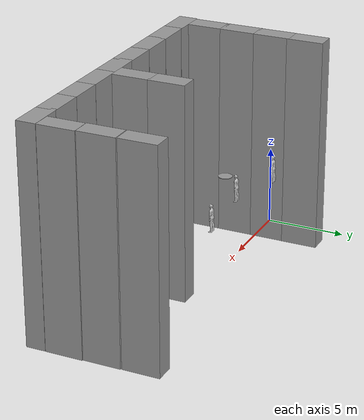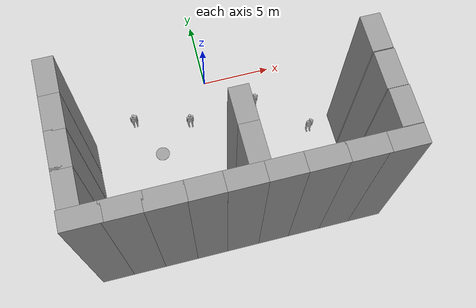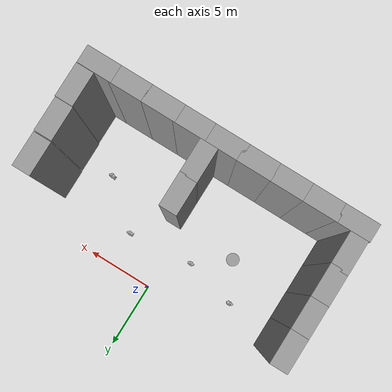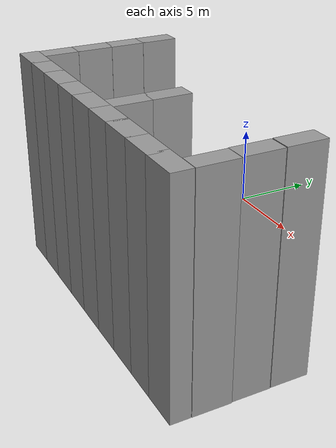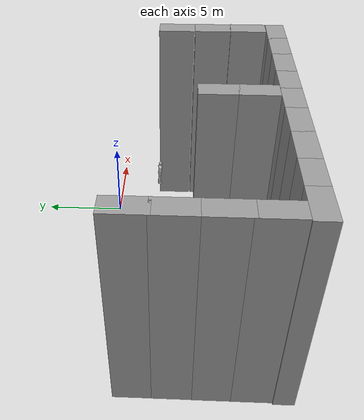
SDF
<sdf version="1.6">
 <model name="indoor_2">
  <link name="link_0_clone_2_clone_clone_clone">
   <pose>-4.34485 -5.08457 0.5 0 -0 0</pose>
   <inertial>
    <mass>0.0318769</mass>
    <inertia>
     <ixx>0.00199501</ixx>
     <ixy>0</ixy>
     <ixz>0</ixz>
     <iyy>0.00199501</iyy>
     <iyz>0</iyz>
     <izz>0.00398461</izz>
    </inertia>
   </inertial>
   <visual name="visual">
    <geometry><cylinder><radius>0.5</radius><length>0.0318771</length></cylinder></geometry>
    <material>
     <lighting>1</lighting>
     <script><uri>file://media/materials/scripts/gazebo.material</uri><name>Gazebo/Grey</name></script>
     <ambient>0.3 0.3 0.3 1</ambient>
     <diffuse>0.7 0.7 0.7 1</diffuse>
     <specular>0.01 0.01 0.01 1</specular>
     <emissive>0 0 0 1</emissive>
     <shader type="pixel"/>
    </material>
   </visual>
   <collision name="collision">
    <geometry><cylinder><radius>0.5</radius><length>0.031877</length></cylinder></geometry>
    <surface>
     <friction>
      <ode><mu>1</mu><mu2>1</mu2><fdir1>0 0 0</fdir1><slip1>0</slip1><slip2>0</slip2></ode>
      <torsional>
       <coefficient>1</coefficient>
       <patch_radius>0</patch_radius>
       <surface_radius>0</surface_radius>
       <use_patch_radius>1</use_patch_radius>
       <ode><slip>0</slip></ode>
      </torsional>
     </friction>
     <bounce><restitution_coefficient>0</restitution_coefficient><threshold>1e+06</threshold></bounce>
     <contact>
      <collide_without_contact>0</collide_without_contact>
      <collide_without_contact_bitmask>1</collide_without_contact_bitmask>
      <collide_bitmask>1</collide_bitmask>
      <ode>
       <soft_cfm>0</soft_cfm>
       <soft_erp>0.2</soft_erp>
       <kp>1e+13</kp>
       <kd>1</kd>
       <max_vel>0.01</max_vel>
       <min_depth>0</min_depth>
      </ode>
      <bullet>
       <split_impulse>1</split_impulse>
       <split_impulse_penetration_threshold>-0.01</split_impulse_penetration_threshold>
       <soft_cfm>0</soft_cfm>
       <soft_erp>0.2</soft_erp>
       <kp>1e+13</kp>
       <kd>1</kd>
      </bullet>
     </contact>
    </surface>
   </collision>
  </link>
  <link name="link_clone_17_clone_1">
   <pose>-9.81876 -11.0846 1.4 0 0 -1.56938</pose>
   <inertial>
    <inertia><ixx>nan</ixx><ixy>0</ixy><ixz>0</ixz><iyy>nan</iyy><iyz>0</iyz><izz>nan</izz></inertia>
    <mass>0</mass>
   </inertial>
   <visual name="visual">
    <cast_shadows>0</cast_shadows>
    <geometry><box><size>1.37568 2.64508 15.4314</size></box></geometry>
    <material>
     <script>
      <uri>model://grey_wall/materials/scripts</uri>
      <uri>model://grey_wall/materials/textures</uri>
      <name>vrc/grey_wall</name>
     </script>
     <ambient>1 1 1 1</ambient>
     <diffuse>1 1 1 1</diffuse>
     <specular>0 0 0 1</specular>
     <emissive>0 0 0 1</emissive>
     <shader type="pixel"/>
    </material>
   </visual>
   <collision name="collision">
    <geometry><box><size>1.37568 2.64508 15.4314</size></box></geometry>
    <surface>
     <friction>
      <ode><mu>1</mu><mu2>1</mu2><fdir1>0 0 0</fdir1><slip1>0</slip1><slip2>0</slip2></ode>
      <torsional>
       <coefficient>1</coefficient>
       <patch_radius>0</patch_radius>
       <surface_radius>0</surface_radius>
       <use_patch_radius>1</use_patch_radius>
       <ode><slip>0</slip></ode>
      </torsional>
     </friction>
     <bounce><restitution_coefficient>0</restitution_coefficient><threshold>1e+06</threshold></bounce>
     <contact>
      <collide_without_contact>0</collide_without_contact>
      <collide_without_contact_bitmask>1</collide_without_contact_bitmask>
      <collide_bitmask>1</collide_bitmask>
      <ode>
       <soft_cfm>0</soft_cfm>
       <soft_erp>0.2</soft_erp>
       <kp>1e+13</kp>
       <kd>1</kd>
       <max_vel>0.01</max_vel>
       <min_depth>0</min_depth>
      </ode>
      <bullet>
       <split_impulse>1</split_impulse>
       <split_impulse_penetration_threshold>-0.01</split_impulse_penetration_threshold>
       <soft_cfm>0</soft_cfm>
       <soft_erp>0.2</soft_erp>
       <kp>1e+13</kp>
       <kd>1</kd>
      </bullet>
     </contact>
    </surface>
   </collision>
  </link>
  <link name="link_clone_17_clone_2">
   <pose>-7.33808 -11.0846 1.4 0 0 -1.56938</pose>
   <inertial>
    <inertia><ixx>nan</ixx><ixy>0</ixy><ixz>0</ixz><iyy>nan</iyy><iyz>0</iyz><izz>nan</izz></inertia>
    <mass>0</mass>
   </inertial>
   <visual name="visual">
    <cast_shadows>0</cast_shadows>
    <geometry><box><size>1.37568 2.64508 15.4314</size></box></geometry>
    <material>
     <script>
      <uri>model://grey_wall/materials/scripts</uri>
      <uri>model://grey_wall/materials/textures</uri>
      <name>vrc/grey_wall</name>
     </script>
     <ambient>1 1 1 1</ambient>
     <diffuse>1 1 1 1</diffuse>
     <specular>0 0 0 1</specular>
     <emissive>0 0 0 1</emissive>
     <shader type="pixel"/>
    </material>
   </visual>
   <collision name="collision">
    <geometry><box><size>1.37568 2.64508 15.4314</size></box></geometry>
    <surface>
     <friction>
      <ode><mu>1</mu><mu2>1</mu2><fdir1>0 0 0</fdir1><slip1>0</slip1><slip2>0</slip2></ode>
      <torsional>
       <coefficient>1</coefficient>
       <patch_radius>0</patch_radius>
       <surface_radius>0</surface_radius>
       <use_patch_radius>1</use_patch_radius>
       <ode><slip>0</slip></ode>
      </torsional>
     </friction>
     <bounce><restitution_coefficient>0</restitution_coefficient><threshold>1e+06</threshold></bounce>
     <contact>
      <collide_without_contact>0</collide_without_contact>
      <collide_without_contact_bitmask>1</collide_without_contact_bitmask>
      <collide_bitmask>1</collide_bitmask>
      <ode>
       <soft_cfm>0</soft_cfm>
       <soft_erp>0.2</soft_erp>
       <kp>1e+13</kp>
       <kd>1</kd>
       <max_vel>0.01</max_vel>
       <min_depth>0</min_depth>
      </ode>
      <bullet>
       <split_impulse>1</split_impulse>
       <split_impulse_penetration_threshold>-0.01</split_impulse_penetration_threshold>
       <soft_cfm>0</soft_cfm>
       <soft_erp>0.2</soft_erp>
       <kp>1e+13</kp>
       <kd>1</kd>
      </bullet>
     </contact>
    </surface>
   </collision>
  </link>
  <link name="link_clone_17_clone_3">
   <pose>-4.81876 -11.0846 1.4 0 0 -1.56938</pose>
   <inertial>
    <inertia><ixx>nan</ixx><ixy>0</ixy><ixz>0</ixz><iyy>nan</iyy><iyz>0</iyz><izz>nan</izz></inertia>
    <mass>0</mass>
   </inertial>
   <visual name="visual">
    <cast_shadows>0</cast_shadows>
    <geometry><box><size>1.37568 2.64508 15.4314</size></box></geometry>
    <material>
     <script>
      <uri>model://grey_wall/materials/scripts</uri>
      <uri>model://grey_wall/materials/textures</uri>
      <name>vrc/grey_wall</name>
     </script>
     <ambient>1 1 1 1</ambient>
     <diffuse>1 1 1 1</diffuse>
     <specular>0 0 0 1</specular>
     <emissive>0 0 0 1</emissive>
     <shader type="pixel"/>
    </material>
   </visual>
   <collision name="collision">
    <geometry><box><size>1.37568 2.64508 15.4314</size></box></geometry>
    <surface>
     <friction>
      <ode><mu>1</mu><mu2>1</mu2><fdir1>0 0 0</fdir1><slip1>0</slip1><slip2>0</slip2></ode>
      <torsional>
       <coefficient>1</coefficient>
       <patch_radius>0</patch_radius>
       <surface_radius>0</surface_radius>
       <use_patch_radius>1</use_patch_radius>
       <ode><slip>0</slip></ode>
      </torsional>
     </friction>
     <bounce><restitution_coefficient>0</restitution_coefficient><threshold>1e+06</threshold></bounce>
     <contact>
      <collide_without_contact>0</collide_without_contact>
      <collide_without_contact_bitmask>1</collide_without_contact_bitmask>
      <collide_bitmask>1</collide_bitmask>
      <ode>
       <soft_cfm>0</soft_cfm>
       <soft_erp>0.2</soft_erp>
       <kp>1e+13</kp>
       <kd>1</kd>
       <max_vel>0.01</max_vel>
       <min_depth>0</min_depth>
      </ode>
      <bullet>
       <split_impulse>1</split_impulse>
       <split_impulse_penetration_threshold>-0.01</split_impulse_penetration_threshold>
       <soft_cfm>0</soft_cfm>
       <soft_erp>0.2</soft_erp>
       <kp>1e+13</kp>
       <kd>1</kd>
      </bullet>
     </contact>
    </surface>
   </collision>
  </link>
  <link name="link_clone_17_clone_4">
   <pose>-2.2226 -11.0846 1.4 0 0 -1.56938</pose>
   <inertial>
    <inertia><ixx>nan</ixx><ixy>0</ixy><ixz>0</ixz><iyy>nan</iyy><iyz>0</iyz><izz>nan</izz></inertia>
    <mass>0</mass>
   </inertial>
   <visual name="visual">
    <cast_shadows>0</cast_shadows>
    <geometry><box><size>1.37568 2.64508 15.4314</size></box></geometry>
    <material>
     <script>
      <uri>model://grey_wall/materials/scripts</uri>
      <uri>model://grey_wall/materials/textures</uri>
      <name>vrc/grey_wall</name>
     </script>
     <ambient>1 1 1 1</ambient>
     <diffuse>1 1 1 1</diffuse>
     <specular>0 0 0 1</specular>
     <emissive>0 0 0 1</emissive>
     <shader type="pixel"/>
    </material>
   </visual>
   <collision name="collision">
    <geometry><box><size>1.37568 2.64508 15.4314</size></box></geometry>
    <surface>
     <friction>
      <ode><mu>1</mu><mu2>1</mu2><fdir1>0 0 0</fdir1><slip1>0</slip1><slip2>0</slip2></ode>
      <torsional>
       <coefficient>1</coefficient>
       <patch_radius>0</patch_radius>
       <surface_radius>0</surface_radius>
       <use_patch_radius>1</use_patch_radius>
       <ode><slip>0</slip></ode>
      </torsional>
     </friction>
     <bounce><restitution_coefficient>0</restitution_coefficient><threshold>1e+06</threshold></bounce>
     <contact>
      <collide_without_contact>0</collide_without_contact>
      <collide_without_contact_bitmask>1</collide_without_contact_bitmask>
      <collide_bitmask>1</collide_bitmask>
      <ode>
       <soft_cfm>0</soft_cfm>
       <soft_erp>0.2</soft_erp>
       <kp>1e+13</kp>
       <kd>1</kd>
       <max_vel>0.01</max_vel>
       <min_depth>0</min_depth>
      </ode>
      <bullet>
       <split_impulse>1</split_impulse>
       <split_impulse_penetration_threshold>-0.01</split_impulse_penetration_threshold>
       <soft_cfm>0</soft_cfm>
       <soft_erp>0.2</soft_erp>
       <kp>1e+13</kp>
       <kd>1</kd>
      </bullet>
     </contact>
    </surface>
   </collision>
  </link>
  <link name="link_clone_17_clone_5">
   <pose>0.181241 -11.0846 1.4 0 0 -1.56938</pose>
   <inertial>
    <inertia><ixx>nan</ixx><ixy>0</ixy><ixz>0</ixz><iyy>nan</iyy><iyz>0</iyz><izz>nan</izz></inertia>
    <mass>0</mass>
   </inertial>
   <visual name="visual">
    <cast_shadows>0</cast_shadows>
    <geometry><box><size>1.37568 2.64508 15.4314</size></box></geometry>
    <material>
     <script>
      <uri>model://grey_wall/materials/scripts</uri>
      <uri>model://grey_wall/materials/textures</uri>
      <name>vrc/grey_wall</name>
     </script>
     <ambient>1 1 1 1</ambient>
     <diffuse>1 1 1 1</diffuse>
     <specular>0 0 0 1</specular>
     <emissive>0 0 0 1</emissive>
     <shader type="pixel"/>
    </material>
   </visual>
   <collision name="collision">
    <geometry><box><size>1.37568 2.64508 15.4314</size></box></geometry>
    <surface>
     <friction>
      <ode><mu>1</mu><mu2>1</mu2><fdir1>0 0 0</fdir1><slip1>0</slip1><slip2>0</slip2></ode>
      <torsional>
       <coefficient>1</coefficient>
       <patch_radius>0</patch_radius>
       <surface_radius>0</surface_radius>
       <use_patch_radius>1</use_patch_radius>
       <ode><slip>0</slip></ode>
      </torsional>
     </friction>
     <bounce><restitution_coefficient>0</restitution_coefficient><threshold>1e+06</threshold></bounce>
     <contact>
      <collide_without_contact>0</collide_without_contact>
      <collide_without_contact_bitmask>1</collide_without_contact_bitmask>
      <collide_bitmask>1</collide_bitmask>
      <ode>
       <soft_cfm>0</soft_cfm>
       <soft_erp>0.2</soft_erp>
       <kp>1e+13</kp>
       <kd>1</kd>
       <max_vel>0.01</max_vel>
       <min_depth>0</min_depth>
      </ode>
      <bullet>
       <split_impulse>1</split_impulse>
       <split_impulse_penetration_threshold>-0.01</split_impulse_penetration_threshold>
       <soft_cfm>0</soft_cfm>
       <soft_erp>0.2</soft_erp>
       <kp>1e+13</kp>
       <kd>1</kd>
      </bullet>
     </contact>
    </surface>
   </collision>
  </link>
  <link name="link_clone_17_clone_6">
   <pose>2.7319 -11.0846 1.4 0 0 -1.56938</pose>
   <inertial>
    <inertia><ixx>nan</ixx><ixy>0</ixy><ixz>0</ixz><iyy>nan</iyy><iyz>0</iyz><izz>nan</izz></inertia>
    <mass>0</mass>
   </inertial>
   <visual name="visual">
    <cast_shadows>0</cast_shadows>
    <geometry><box><size>1.37568 2.64508 15.4314</size></box></geometry>
    <material>
     <script>
      <uri>model://grey_wall/materials/scripts</uri>
      <uri>model://grey_wall/materials/textures</uri>
      <name>vrc/grey_wall</name>
     </script>
     <ambient>1 1 1 1</ambient>
     <diffuse>1 1 1 1</diffuse>
     <specular>0 0 0 1</specular>
     <emissive>0 0 0 1</emissive>
     <shader type="pixel"/>
    </material>
   </visual>
   <collision name="collision">
    <geometry><box><size>1.37568 2.64508 15.4314</size></box></geometry>
    <surface>
     <friction>
      <ode><mu>1</mu><mu2>1</mu2><fdir1>0 0 0</fdir1><slip1>0</slip1><slip2>0</slip2></ode>
      <torsional>
       <coefficient>1</coefficient>
       <patch_radius>0</patch_radius>
       <surface_radius>0</surface_radius>
       <use_patch_radius>1</use_patch_radius>
       <ode><slip>0</slip></ode>
      </torsional>
     </friction>
     <bounce><restitution_coefficient>0</restitution_coefficient><threshold>1e+06</threshold></bounce>
     <contact>
      <collide_without_contact>0</collide_without_contact>
      <collide_without_contact_bitmask>1</collide_without_contact_bitmask>
      <collide_bitmask>1</collide_bitmask>
      <ode>
       <soft_cfm>0</soft_cfm>
       <soft_erp>0.2</soft_erp>
       <kp>1e+13</kp>
       <kd>1</kd>
       <max_vel>0.01</max_vel>
       <min_depth>0</min_depth>
      </ode>
      <bullet>
       <split_impulse>1</split_impulse>
       <split_impulse_penetration_threshold>-0.01</split_impulse_penetration_threshold>
       <soft_cfm>0</soft_cfm>
       <soft_erp>0.2</soft_erp>
       <kp>1e+13</kp>
       <kd>1</kd>
      </bullet>
     </contact>
    </surface>
   </collision>
  </link>
  <link name="link_clone_17_clone_7">
   <pose>5.18124 -11.0846 1.4 0 0 -1.56938</pose>
   <inertial>
    <inertia><ixx>nan</ixx><ixy>0</ixy><ixz>0</ixz><iyy>nan</iyy><iyz>0</iyz><izz>nan</izz></inertia>
    <mass>0</mass>
   </inertial>
   <visual name="visual">
    <cast_shadows>0</cast_shadows>
    <geometry><box><size>1.37568 2.64508 15.4314</size></box></geometry>
    <material>
     <script>
      <uri>model://grey_wall/materials/scripts</uri>
      <uri>model://grey_wall/materials/textures</uri>
      <name>vrc/grey_wall</name>
     </script>
     <ambient>1 1 1 1</ambient>
     <diffuse>1 1 1 1</diffuse>
     <specular>0 0 0 1</specular>
     <emissive>0 0 0 1</emissive>
     <shader type="pixel"/>
    </material>
   </visual>
   <collision name="collision">
    <geometry><box><size>1.37568 2.64508 15.4314</size></box></geometry>
    <surface>
     <friction>
      <ode><mu>1</mu><mu2>1</mu2><fdir1>0 0 0</fdir1><slip1>0</slip1><slip2>0</slip2></ode>
      <torsional>
       <coefficient>1</coefficient>
       <patch_radius>0</patch_radius>
       <surface_radius>0</surface_radius>
       <use_patch_radius>1</use_patch_radius>
       <ode><slip>0</slip></ode>
      </torsional>
     </friction>
     <bounce><restitution_coefficient>0</restitution_coefficient><threshold>1e+06</threshold></bounce>
     <contact>
      <collide_without_contact>0</collide_without_contact>
      <collide_without_contact_bitmask>1</collide_without_contact_bitmask>
      <collide_bitmask>1</collide_bitmask>
      <ode>
       <soft_cfm>0</soft_cfm>
       <soft_erp>0.2</soft_erp>
       <kp>1e+13</kp>
       <kd>1</kd>
       <max_vel>0.01</max_vel>
       <min_depth>0</min_depth>
      </ode>
      <bullet>
       <split_impulse>1</split_impulse>
       <split_impulse_penetration_threshold>-0.01</split_impulse_penetration_threshold>
       <soft_cfm>0</soft_cfm>
       <soft_erp>0.2</soft_erp>
       <kp>1e+13</kp>
       <kd>1</kd>
      </bullet>
     </contact>
    </surface>
   </collision>
  </link>
  <link name="link_clone_17_clone_8">
   <pose>7.75679 -11.0846 1.4 0 0 -1.56938</pose>
   <inertial>
    <inertia><ixx>nan</ixx><ixy>0</ixy><ixz>0</ixz><iyy>nan</iyy><iyz>0</iyz><izz>nan</izz></inertia>
    <mass>0</mass>
   </inertial>
   <visual name="visual">
    <cast_shadows>0</cast_shadows>
    <geometry><box><size>1.37568 2.64508 15.4314</size></box></geometry>
    <material>
     <script>
      <uri>model://grey_wall/materials/scripts</uri>
      <uri>model://grey_wall/materials/textures</uri>
      <name>vrc/grey_wall</name>
     </script>
     <ambient>1 1 1 1</ambient>
     <diffuse>1 1 1 1</diffuse>
     <specular>0 0 0 1</specular>
     <emissive>0 0 0 1</emissive>
     <shader type="pixel"/>
    </material>
   </visual>
   <collision name="collision">
    <geometry><box><size>1.37568 2.64508 15.4314</size></box></geometry>
    <surface>
     <friction>
      <ode><mu>1</mu><mu2>1</mu2><fdir1>0 0 0</fdir1><slip1>0</slip1><slip2>0</slip2></ode>
      <torsional>
       <coefficient>1</coefficient>
       <patch_radius>0</patch_radius>
       <surface_radius>0</surface_radius>
       <use_patch_radius>1</use_patch_radius>
       <ode><slip>0</slip></ode>
      </torsional>
     </friction>
     <bounce><restitution_coefficient>0</restitution_coefficient><threshold>1e+06</threshold></bounce>
     <contact>
      <collide_without_contact>0</collide_without_contact>
      <collide_without_contact_bitmask>1</collide_without_contact_bitmask>
      <collide_bitmask>1</collide_bitmask>
      <ode>
       <soft_cfm>0</soft_cfm>
       <soft_erp>0.2</soft_erp>
       <kp>1e+13</kp>
       <kd>1</kd>
       <max_vel>0.01</max_vel>
       <min_depth>0</min_depth>
      </ode>
      <bullet>
       <split_impulse>1</split_impulse>
       <split_impulse_penetration_threshold>-0.01</split_impulse_penetration_threshold>
       <soft_cfm>0</soft_cfm>
       <soft_erp>0.2</soft_erp>
       <kp>1e+13</kp>
       <kd>1</kd>
      </bullet>
     </contact>
    </surface>
   </collision>
  </link>
  <link name="link_clone_17_clone_9">
   <pose>10.1812 -11.0846 1.4 0 0 -1.56938</pose>
   <inertial>
    <inertia><ixx>nan</ixx><ixy>0</ixy><ixz>0</ixz><iyy>nan</iyy><iyz>0</iyz><izz>nan</izz></inertia>
    <mass>0</mass>
   </inertial>
   <visual name="visual">
    <cast_shadows>0</cast_shadows>
    <geometry><box><size>1.37568 2.64508 15.4314</size></box></geometry>
    <material>
     <script>
      <uri>model://grey_wall/materials/scripts</uri>
      <uri>model://grey_wall/materials/textures</uri>
      <name>vrc/grey_wall</name>
     </script>
     <ambient>1 1 1 1</ambient>
     <diffuse>1 1 1 1</diffuse>
     <specular>0 0 0 1</specular>
     <emissive>0 0 0 1</emissive>
     <shader type="pixel"/>
    </material>
   </visual>
   <collision name="collision">
    <geometry><box><size>1.37568 2.64508 15.4314</size></box></geometry>
    <surface>
     <friction>
      <ode><mu>1</mu><mu2>1</mu2><fdir1>0 0 0</fdir1><slip1>0</slip1><slip2>0</slip2></ode>
      <torsional>
       <coefficient>1</coefficient>
       <patch_radius>0</patch_radius>
       <surface_radius>0</surface_radius>
       <use_patch_radius>1</use_patch_radius>
       <ode><slip>0</slip></ode>
      </torsional>
     </friction>
     <bounce><restitution_coefficient>0</restitution_coefficient><threshold>1e+06</threshold></bounce>
     <contact>
      <collide_without_contact>0</collide_without_contact>
      <collide_without_contact_bitmask>1</collide_without_contact_bitmask>
      <collide_bitmask>1</collide_bitmask>
      <ode>
       <soft_cfm>0</soft_cfm>
       <soft_erp>0.2</soft_erp>
       <kp>1e+13</kp>
       <kd>1</kd>
       <max_vel>0.01</max_vel>
       <min_depth>0</min_depth>
      </ode>
      <bullet>
       <split_impulse>1</split_impulse>
       <split_impulse_penetration_threshold>-0.01</split_impulse_penetration_threshold>
       <soft_cfm>0</soft_cfm>
       <soft_erp>0.2</soft_erp>
       <kp>1e+13</kp>
       <kd>1</kd>
      </bullet>
     </contact>
    </surface>
   </collision>
  </link>
  <link name="link_clone_3">
   <pose>-10.332 -1.60605 1.4 0 -0 0</pose>
   <inertial>
    <inertia><ixx>nan</ixx><ixy>0</ixy><ixz>0</ixz><iyy>nan</iyy><iyz>0</iyz><izz>nan</izz></inertia>
    <mass>0</mass>
   </inertial>
   <visual name="visual">
    <cast_shadows>0</cast_shadows>
    <geometry><box><size>1.37568 2.64508 15.4314</size></box></geometry>
    <material>
     <script>
      <uri>model://grey_wall/materials/scripts</uri>
      <uri>model://grey_wall/materials/textures</uri>
      <name>vrc/grey_wall</name>
     </script>
     <ambient>1 1 1 1</ambient>
     <diffuse>1 1 1 1</diffuse>
     <specular>0 0 0 1</specular>
     <emissive>0 0 0 1</emissive>
     <shader type="pixel"/>
    </material>
   </visual>
   <collision name="collision">
    <geometry><box><size>1.37568 2.64508 15.4314</size></box></geometry>
    <surface>
     <friction>
      <ode><mu>1</mu><mu2>1</mu2><fdir1>0 0 0</fdir1><slip1>0</slip1><slip2>0</slip2></ode>
      <torsional>
       <coefficient>1</coefficient>
       <patch_radius>0</patch_radius>
       <surface_radius>0</surface_radius>
       <use_patch_radius>1</use_patch_radius>
       <ode><slip>0</slip></ode>
      </torsional>
     </friction>
     <bounce><restitution_coefficient>0</restitution_coefficient><threshold>1e+06</threshold></bounce>
     <contact>
      <collide_without_contact>0</collide_without_contact>
      <collide_without_contact_bitmask>1</collide_without_contact_bitmask>
      <collide_bitmask>1</collide_bitmask>
      <ode>
       <soft_cfm>0</soft_cfm>
       <soft_erp>0.2</soft_erp>
       <kp>1e+13</kp>
       <kd>1</kd>
       <max_vel>0.01</max_vel>
       <min_depth>0</min_depth>
      </ode>
      <bullet>
       <split_impulse>1</split_impulse>
       <split_impulse_penetration_threshold>-0.01</split_impulse_penetration_threshold>
       <soft_cfm>0</soft_cfm>
       <soft_erp>0.2</soft_erp>
       <kp>1e+13</kp>
       <kd>1</kd>
      </bullet>
     </contact>
    </surface>
   </collision>
  </link>
  <link name="link_clone_4">
   <pose>-10.3369 -4.08457 1.4 0 -0 0</pose>
   <inertial>
    <inertia><ixx>nan</ixx><ixy>0</ixy><ixz>0</ixz><iyy>nan</iyy><iyz>0</iyz><izz>nan</izz></inertia>
    <mass>0</mass>
   </inertial>
   <visual name="visual">
    <cast_shadows>0</cast_shadows>
    <geometry><box><size>1.37568 2.64508 15.4314</size></box></geometry>
    <material>
     <script>
      <uri>model://grey_wall/materials/scripts</uri>
      <uri>model://grey_wall/materials/textures</uri>
      <name>vrc/grey_wall</name>
     </script>
     <ambient>1 1 1 1</ambient>
     <diffuse>1 1 1 1</diffuse>
     <specular>0 0 0 1</specular>
     <emissive>0 0 0 1</emissive>
     <shader type="pixel"/>
    </material>
   </visual>
   <collision name="collision">
    <geometry><box><size>1.37568 2.64508 15.4314</size></box></geometry>
    <surface>
     <friction>
      <ode><mu>1</mu><mu2>1</mu2><fdir1>0 0 0</fdir1><slip1>0</slip1><slip2>0</slip2></ode>
      <torsional>
       <coefficient>1</coefficient>
       <patch_radius>0</patch_radius>
       <surface_radius>0</surface_radius>
       <use_patch_radius>1</use_patch_radius>
       <ode><slip>0</slip></ode>
      </torsional>
     </friction>
     <bounce><restitution_coefficient>0</restitution_coefficient><threshold>1e+06</threshold></bounce>
     <contact>
      <collide_without_contact>0</collide_without_contact>
      <collide_without_contact_bitmask>1</collide_without_contact_bitmask>
      <collide_bitmask>1</collide_bitmask>
      <ode>
       <soft_cfm>0</soft_cfm>
       <soft_erp>0.2</soft_erp>
       <kp>1e+13</kp>
       <kd>1</kd>
       <max_vel>0.01</max_vel>
       <min_depth>0</min_depth>
      </ode>
      <bullet>
       <split_impulse>1</split_impulse>
       <split_impulse_penetration_threshold>-0.01</split_impulse_penetration_threshold>
       <soft_cfm>0</soft_cfm>
       <soft_erp>0.2</soft_erp>
       <kp>1e+13</kp>
       <kd>1</kd>
      </bullet>
     </contact>
    </surface>
   </collision>
  </link>
  <link name="link_clone_5">
   <pose>-10.347 -6.63016 1.4 0 -0 0</pose>
   <inertial>
    <inertia><ixx>nan</ixx><ixy>0</ixy><ixz>0</ixz><iyy>nan</iyy><iyz>0</iyz><izz>nan</izz></inertia>
    <mass>0</mass>
   </inertial>
   <visual name="visual">
    <cast_shadows>0</cast_shadows>
    <geometry><box><size>1.37568 2.64508 15.4314</size></box></geometry>
    <material>
     <script>
      <uri>model://grey_wall/materials/scripts</uri>
      <uri>model://grey_wall/materials/textures</uri>
      <name>vrc/grey_wall</name>
     </script>
     <ambient>1 1 1 1</ambient>
     <diffuse>1 1 1 1</diffuse>
     <specular>0 0 0 1</specular>
     <emissive>0 0 0 1</emissive>
     <shader type="pixel"/>
    </material>
   </visual>
   <collision name="collision">
    <geometry><box><size>1.37568 2.64508 15.4314</size></box></geometry>
    <surface>
     <friction>
      <ode><mu>1</mu><mu2>1</mu2><fdir1>0 0 0</fdir1><slip1>0</slip1><slip2>0</slip2></ode>
      <torsional>
       <coefficient>1</coefficient>
       <patch_radius>0</patch_radius>
       <surface_radius>0</surface_radius>
       <use_patch_radius>1</use_patch_radius>
       <ode><slip>0</slip></ode>
      </torsional>
     </friction>
     <bounce><restitution_coefficient>0</restitution_coefficient><threshold>1e+06</threshold></bounce>
     <contact>
      <collide_without_contact>0</collide_without_contact>
      <collide_without_contact_bitmask>1</collide_without_contact_bitmask>
      <collide_bitmask>1</collide_bitmask>
      <ode>
       <soft_cfm>0</soft_cfm>
       <soft_erp>0.2</soft_erp>
       <kp>1e+13</kp>
       <kd>1</kd>
       <max_vel>0.01</max_vel>
       <min_depth>0</min_depth>
      </ode>
      <bullet>
       <split_impulse>1</split_impulse>
       <split_impulse_penetration_threshold>-0.01</split_impulse_penetration_threshold>
       <soft_cfm>0</soft_cfm>
       <soft_erp>0.2</soft_erp>
       <kp>1e+13</kp>
       <kd>1</kd>
      </bullet>
     </contact>
    </surface>
   </collision>
  </link>
  <link name="link_clone_6">
   <pose>-10.3515 -9.08457 1.4 0 -0 0</pose>
   <inertial>
    <inertia><ixx>nan</ixx><ixy>0</ixy><ixz>0</ixz><iyy>nan</iyy><iyz>0</iyz><izz>nan</izz></inertia>
    <mass>0</mass>
   </inertial>
   <visual name="visual">
    <cast_shadows>0</cast_shadows>
    <geometry><box><size>1.37568 2.64508 15.4314</size></box></geometry>
    <material>
     <script>
      <uri>model://grey_wall/materials/scripts</uri>
      <uri>model://grey_wall/materials/textures</uri>
      <name>vrc/grey_wall</name>
     </script>
     <ambient>1 1 1 1</ambient>
     <diffuse>1 1 1 1</diffuse>
     <specular>0 0 0 1</specular>
     <emissive>0 0 0 1</emissive>
     <shader type="pixel"/>
    </material>
   </visual>
   <collision name="collision">
    <geometry><box><size>1.37568 2.64508 15.4314</size></box></geometry>
    <surface>
     <friction>
      <ode><mu>1</mu><mu2>1</mu2><fdir1>0 0 0</fdir1><slip1>0</slip1><slip2>0</slip2></ode>
      <torsional>
       <coefficient>1</coefficient>
       <patch_radius>0</patch_radius>
       <surface_radius>0</surface_radius>
       <use_patch_radius>1</use_patch_radius>
       <ode><slip>0</slip></ode>
      </torsional>
     </friction>
     <bounce><restitution_coefficient>0</restitution_coefficient><threshold>1e+06</threshold></bounce>
     <contact>
      <collide_without_contact>0</collide_without_contact>
      <collide_without_contact_bitmask>1</collide_without_contact_bitmask>
      <collide_bitmask>1</collide_bitmask>
      <ode>
       <soft_cfm>0</soft_cfm>
       <soft_erp>0.2</soft_erp>
       <kp>1e+13</kp>
       <kd>1</kd>
       <max_vel>0.01</max_vel>
       <min_depth>0</min_depth>
      </ode>
      <bullet>
       <split_impulse>1</split_impulse>
       <split_impulse_penetration_threshold>-0.01</split_impulse_penetration_threshold>
       <soft_cfm>0</soft_cfm>
       <soft_erp>0.2</soft_erp>
       <kp>1e+13</kp>
       <kd>1</kd>
      </bullet>
     </contact>
    </surface>
   </collision>
  </link>
  <link name="link_clone_6_clone">
   <pose>1.18124 -9.08457 1.4 0 -0 0</pose>
   <inertial>
    <inertia><ixx>nan</ixx><ixy>0</ixy><ixz>0</ixz><iyy>nan</iyy><iyz>0</iyz><izz>nan</izz></inertia>
    <mass>0</mass>
   </inertial>
   <visual name="visual">
    <cast_shadows>0</cast_shadows>
    <geometry><box><size>1.37568 2.64508 15.4314</size></box></geometry>
    <material>
     <script>
      <uri>model://grey_wall/materials/scripts</uri>
      <uri>model://grey_wall/materials/textures</uri>
      <name>vrc/grey_wall</name>
     </script>
     <ambient>1 1 1 1</ambient>
     <diffuse>1 1 1 1</diffuse>
     <specular>0 0 0 1</specular>
     <emissive>0 0 0 1</emissive>
     <shader type="pixel"/>
    </material>
   </visual>
   <collision name="collision">
    <geometry><box><size>1.37568 2.64508 15.4314</size></box></geometry>
    <surface>
     <friction>
      <ode><mu>1</mu><mu2>1</mu2><fdir1>0 0 0</fdir1><slip1>0</slip1><slip2>0</slip2></ode>
      <torsional>
       <coefficient>1</coefficient>
       <patch_radius>0</patch_radius>
       <surface_radius>0</surface_radius>
       <use_patch_radius>1</use_patch_radius>
       <ode><slip>0</slip></ode>
      </torsional>
     </friction>
     <bounce><restitution_coefficient>0</restitution_coefficient><threshold>1e+06</threshold></bounce>
     <contact>
      <collide_without_contact>0</collide_without_contact>
      <collide_without_contact_bitmask>1</collide_without_contact_bitmask>
      <collide_bitmask>1</collide_bitmask>
      <ode>
       <soft_cfm>0</soft_cfm>
       <soft_erp>0.2</soft_erp>
       <kp>1e+13</kp>
       <kd>1</kd>
       <max_vel>0.01</max_vel>
       <min_depth>0</min_depth>
      </ode>
      <bullet>
       <split_impulse>1</split_impulse>
       <split_impulse_penetration_threshold>-0.01</split_impulse_penetration_threshold>
       <soft_cfm>0</soft_cfm>
       <soft_erp>0.2</soft_erp>
       <kp>1e+13</kp>
       <kd>1</kd>
      </bullet>
     </contact>
    </surface>
   </collision>
  </link>
  <link name="link_clone_6_clone_0">
   <pose>1.18124 -6.52972 1.4 0 -0 0</pose>
   <inertial>
    <inertia><ixx>nan</ixx><ixy>0</ixy><ixz>0</ixz><iyy>nan</iyy><iyz>0</iyz><izz>nan</izz></inertia>
    <mass>0</mass>
   </inertial>
   <visual name="visual">
    <cast_shadows>0</cast_shadows>
    <geometry><box><size>1.37568 2.64508 15.4314</size></box></geometry>
    <material>
     <script>
      <uri>model://grey_wall/materials/scripts</uri>
      <uri>model://grey_wall/materials/textures</uri>
      <name>vrc/grey_wall</name>
     </script>
     <ambient>1 1 1 1</ambient>
     <diffuse>1 1 1 1</diffuse>
     <specular>0 0 0 1</specular>
     <emissive>0 0 0 1</emissive>
     <shader type="pixel"/>
    </material>
   </visual>
   <collision name="collision">
    <geometry><box><size>1.37568 2.64508 15.4314</size></box></geometry>
    <surface>
     <friction>
      <ode><mu>1</mu><mu2>1</mu2><fdir1>0 0 0</fdir1><slip1>0</slip1><slip2>0</slip2></ode>
      <torsional>
       <coefficient>1</coefficient>
       <patch_radius>0</patch_radius>
       <surface_radius>0</surface_radius>
       <use_patch_radius>1</use_patch_radius>
       <ode><slip>0</slip></ode>
      </torsional>
     </friction>
     <bounce><restitution_coefficient>0</restitution_coefficient><threshold>1e+06</threshold></bounce>
     <contact>
      <collide_without_contact>0</collide_without_contact>
      <collide_without_contact_bitmask>1</collide_without_contact_bitmask>
      <collide_bitmask>1</collide_bitmask>
      <ode>
       <soft_cfm>0</soft_cfm>
       <soft_erp>0.2</soft_erp>
       <kp>1e+13</kp>
       <kd>1</kd>
       <max_vel>0.01</max_vel>
       <min_depth>0</min_depth>
      </ode>
      <bullet>
       <split_impulse>1</split_impulse>
       <split_impulse_penetration_threshold>-0.01</split_impulse_penetration_threshold>
       <soft_cfm>0</soft_cfm>
       <soft_erp>0.2</soft_erp>
       <kp>1e+13</kp>
       <kd>1</kd>
      </bullet>
     </contact>
    </surface>
   </collision>
  </link>
  <link name="link_clone_6_clone_clone">
   <pose>10.8271 -9.04966 1.4 0 -0 0</pose>
   <inertial>
    <inertia><ixx>nan</ixx><ixy>0</ixy><ixz>0</ixz><iyy>nan</iyy><iyz>0</iyz><izz>nan</izz></inertia>
    <mass>0</mass>
   </inertial>
   <visual name="visual">
    <cast_shadows>0</cast_shadows>
    <geometry><box><size>1.37568 2.64508 15.4314</size></box></geometry>
    <material>
     <script>
      <uri>model://grey_wall/materials/scripts</uri>
      <uri>model://grey_wall/materials/textures</uri>
      <name>vrc/grey_wall</name>
     </script>
     <ambient>1 1 1 1</ambient>
     <diffuse>1 1 1 1</diffuse>
     <specular>0 0 0 1</specular>
     <emissive>0 0 0 1</emissive>
     <shader type="pixel"/>
    </material>
   </visual>
   <collision name="collision">
    <geometry><box><size>1.37568 2.64508 15.4314</size></box></geometry>
    <surface>
     <friction>
      <ode><mu>1</mu><mu2>1</mu2><fdir1>0 0 0</fdir1><slip1>0</slip1><slip2>0</slip2></ode>
      <torsional>
       <coefficient>1</coefficient>
       <patch_radius>0</patch_radius>
       <surface_radius>0</surface_radius>
       <use_patch_radius>1</use_patch_radius>
       <ode><slip>0</slip></ode>
      </torsional>
     </friction>
     <bounce><restitution_coefficient>0</restitution_coefficient><threshold>1e+06</threshold></bounce>
     <contact>
      <collide_without_contact>0</collide_without_contact>
      <collide_without_contact_bitmask>1</collide_without_contact_bitmask>
      <collide_bitmask>1</collide_bitmask>
      <ode>
       <soft_cfm>0</soft_cfm>
       <soft_erp>0.2</soft_erp>
       <kp>1e+13</kp>
       <kd>1</kd>
       <max_vel>0.01</max_vel>
       <min_depth>0</min_depth>
      </ode>
      <bullet>
       <split_impulse>1</split_impulse>
       <split_impulse_penetration_threshold>-0.01</split_impulse_penetration_threshold>
       <soft_cfm>0</soft_cfm>
       <soft_erp>0.2</soft_erp>
       <kp>1e+13</kp>
       <kd>1</kd>
      </bullet>
     </contact>
    </surface>
   </collision>
  </link>
  <link name="link_clone_6_clone_clone_0">
   <pose>10.7421 -3.67854 1.4 0 -0 0</pose>
   <inertial>
    <inertia><ixx>nan</ixx><ixy>0</ixy><ixz>0</ixz><iyy>nan</iyy><iyz>0</iyz><izz>nan</izz></inertia>
    <mass>0</mass>
   </inertial>
   <visual name="visual">
    <cast_shadows>0</cast_shadows>
    <geometry><box><size>1.37568 2.64508 15.4314</size></box></geometry>
    <material>
     <script>
      <uri>model://grey_wall/materials/scripts</uri>
      <uri>model://grey_wall/materials/textures</uri>
      <name>vrc/grey_wall</name>
     </script>
     <ambient>1 1 1 1</ambient>
     <diffuse>1 1 1 1</diffuse>
     <specular>0 0 0 1</specular>
     <emissive>0 0 0 1</emissive>
     <shader type="pixel"/>
    </material>
   </visual>
   <collision name="collision">
    <geometry><box><size>1.37568 2.64508 15.4314</size></box></geometry>
    <surface>
     <friction>
      <ode><mu>1</mu><mu2>1</mu2><fdir1>0 0 0</fdir1><slip1>0</slip1><slip2>0</slip2></ode>
      <torsional>
       <coefficient>1</coefficient>
       <patch_radius>0</patch_radius>
       <surface_radius>0</surface_radius>
       <use_patch_radius>1</use_patch_radius>
       <ode><slip>0</slip></ode>
      </torsional>
     </friction>
     <bounce><restitution_coefficient>0</restitution_coefficient><threshold>1e+06</threshold></bounce>
     <contact>
      <collide_without_contact>0</collide_without_contact>
      <collide_without_contact_bitmask>1</collide_without_contact_bitmask>
      <collide_bitmask>1</collide_bitmask>
      <ode>
       <soft_cfm>0</soft_cfm>
       <soft_erp>0.2</soft_erp>
       <kp>1e+13</kp>
       <kd>1</kd>
       <max_vel>0.01</max_vel>
       <min_depth>0</min_depth>
      </ode>
      <bullet>
       <split_impulse>1</split_impulse>
       <split_impulse_penetration_threshold>-0.01</split_impulse_penetration_threshold>
       <soft_cfm>0</soft_cfm>
       <soft_erp>0.2</soft_erp>
       <kp>1e+13</kp>
       <kd>1</kd>
      </bullet>
     </contact>
    </surface>
   </collision>
  </link>
  <link name="link_clone_6_clone_clone_clone">
   <pose>10.7722 -6.38694 1.4 0 -0 0</pose>
   <inertial>
    <inertia><ixx>nan</ixx><ixy>0</ixy><ixz>0</ixz><iyy>nan</iyy><iyz>0</iyz><izz>nan</izz></inertia>
    <mass>0</mass>
   </inertial>
   <visual name="visual">
    <cast_shadows>0</cast_shadows>
    <geometry><box><size>1.37568 2.64508 15.4314</size></box></geometry>
    <material>
     <script>
      <uri>model://grey_wall/materials/scripts</uri>
      <uri>model://grey_wall/materials/textures</uri>
      <name>vrc/grey_wall</name>
     </script>
     <ambient>1 1 1 1</ambient>
     <diffuse>1 1 1 1</diffuse>
     <specular>0 0 0 1</specular>
     <emissive>0 0 0 1</emissive>
     <shader type="pixel"/>
    </material>
   </visual>
   <collision name="collision">
    <geometry><box><size>1.37568 2.64508 15.4314</size></box></geometry>
    <surface>
     <friction>
      <ode><mu>1</mu><mu2>1</mu2><fdir1>0 0 0</fdir1><slip1>0</slip1><slip2>0</slip2></ode>
      <torsional>
       <coefficient>1</coefficient>
       <patch_radius>0</patch_radius>
       <surface_radius>0</surface_radius>
       <use_patch_radius>1</use_patch_radius>
       <ode><slip>0</slip></ode>
      </torsional>
     </friction>
     <bounce><restitution_coefficient>0</restitution_coefficient><threshold>1e+06</threshold></bounce>
     <contact>
      <collide_without_contact>0</collide_without_contact>
      <collide_without_contact_bitmask>1</collide_without_contact_bitmask>
      <collide_bitmask>1</collide_bitmask>
      <ode>
       <soft_cfm>0</soft_cfm>
       <soft_erp>0.2</soft_erp>
       <kp>1e+13</kp>
       <kd>1</kd>
       <max_vel>0.01</max_vel>
       <min_depth>0</min_depth>
      </ode>
      <bullet>
       <split_impulse>1</split_impulse>
       <split_impulse_penetration_threshold>-0.01</split_impulse_penetration_threshold>
       <soft_cfm>0</soft_cfm>
       <soft_erp>0.2</soft_erp>
       <kp>1e+13</kp>
       <kd>1</kd>
      </bullet>
     </contact>
    </surface>
   </collision>
  </link>
  <model name="person_standing_clone_2">
   <link name="link">
    <inertial>
     <pose>0 -0.1 0.95 0 -0 0</pose>
     <mass>80</mass>
     <inertia><ixx>24.88</ixx><ixy>0</ixy><ixz>0</ixz><iyy>25.73</iyy><iyz>0</iyz><izz>2.48</izz></inertia>
    </inertial>
    <collision name="bottom">
     <pose>0 -0.1 0.01 0 -0 0</pose>
     <geometry><box><size>0.5 0.35 0.02</size></box></geometry>
    </collision>
    <collision name="person">
     <pose>0 0 0.02 0.04 -0 0</pose>
     <geometry><mesh><uri>model://person_standing/meshes/standing.dae</uri></mesh></geometry>
    </collision>
    <visual name="visual">
     <pose>0 0 0.02 0.04 -0 0</pose>
     <geometry><mesh><uri>model://person_standing/meshes/standing.dae</uri></mesh></geometry>
    </visual>
   </link>
   <pose>-5.81876 -2.08457 0 0 -0 0</pose>
  </model>
  <model name="person_standing_clone_3">
   <link name="link">
    <inertial>
     <pose>0 -0.1 0.95 0 -0 0</pose>
     <mass>80</mass>
     <inertia><ixx>24.88</ixx><ixy>0</ixy><ixz>0</ixz><iyy>25.73</iyy><iyz>0</iyz><izz>2.48</izz></inertia>
    </inertial>
    <collision name="bottom">
     <pose>0 -0.1 0.01 0 -0 0</pose>
     <geometry><box><size>0.5 0.35 0.02</size></box></geometry>
    </collision>
    <collision name="person">
     <pose>0 0 0.02 0.04 -0 0</pose>
     <geometry><mesh><uri>model://person_standing/meshes/standing.dae</uri></mesh></geometry>
    </collision>
    <visual name="visual">
     <pose>0 0 0.02 0.04 -0 0</pose>
     <geometry><mesh><uri>model://person_standing/meshes/standing.dae</uri></mesh></geometry>
    </visual>
   </link>
   <pose>-1.81876 -3.08457 0 0 -0 0</pose>
  </model>
  <model name="person_standing_clone_5">
   <link name="link">
    <inertial>
     <pose>0 -0.1 0.95 0 -0 0</pose>
     <mass>80</mass>
     <inertia><ixx>24.88</ixx><ixy>0</ixy><ixz>0</ixz><iyy>25.73</iyy><iyz>0</iyz><izz>2.48</izz></inertia>
    </inertial>
    <collision name="bottom">
     <pose>0 -0.1 0.01 0 -0 0</pose>
     <geometry><box><size>0.5 0.35 0.02</size></box></geometry>
    </collision>
    <collision name="person">
     <pose>0 0 0.02 0.04 -0 0</pose>
     <geometry><mesh><uri>model://person_standing/meshes/standing.dae</uri></mesh></geometry>
    </collision>
    <visual name="visual">
     <pose>0 0 0.02 0.04 -0 0</pose>
     <geometry><mesh><uri>model://person_standing/meshes/standing.dae</uri></mesh></geometry>
    </visual>
   </link>
   <pose>6.60226 -5.55838 0 0 -0 0</pose>
  </model>
  <model name="person_standing_clone_7">
   <link name="link">
    <inertial>
     <pose>0 -0.1 0.95 0 -0 0</pose>
     <mass>80</mass>
     <inertia><ixx>24.88</ixx><ixy>0</ixy><ixz>0</ixz><iyy>25.73</iyy><iyz>0</iyz><izz>2.48</izz></inertia>
    </inertial>
    <collision name="bottom">
     <pose>0 -0.1 0.01 0 -0 0</pose>
     <geometry><box><size>0.5 0.35 0.02</size></box></geometry>
    </collision>
    <collision name="person">
     <pose>0 0 0.02 0.04 -0 0</pose>
     <geometry><mesh><uri>model://person_standing/meshes/standing.dae</uri></mesh></geometry>
    </collision>
    <visual name="visual">
     <pose>0 0 0.02 0.04 -0 0</pose>
     <geometry><mesh><uri>model://person_standing/meshes/standing.dae</uri></mesh></geometry>
    </visual>
   </link>
   <pose>3.18124 -2.61789 0 0 -0 0</pose>
  </model>
  <static>1</static>
 </model>
</sdf>
